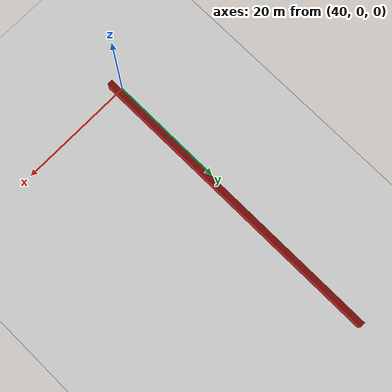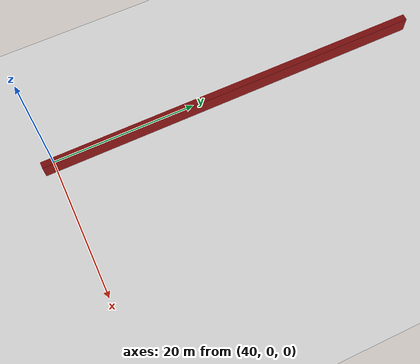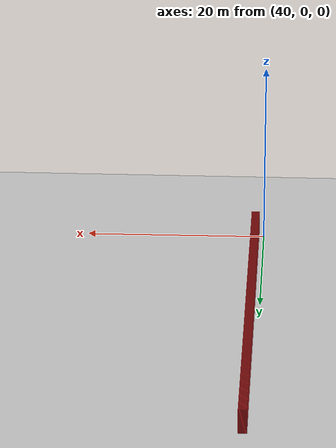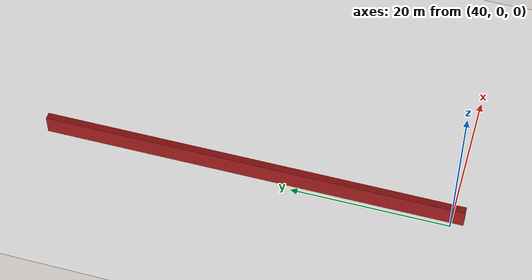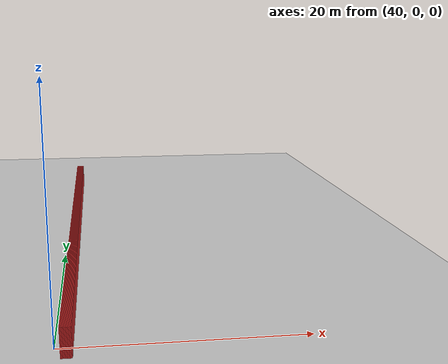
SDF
<sdf version="1.4">
 <world name="1_wall">
  <model name="ground_plane">
   <static>1</static>
   <link name="link">
    <collision name="collision">
     <geometry><plane><normal>0 0 1</normal><size>1000 1000</size></plane></geometry>
     <surface><friction><ode><mu>100</mu><mu2>50</mu2></ode></friction></surface>
    </collision>
    <visual name="visual">
     <cast_shadows>0</cast_shadows>
     <geometry><plane><normal>0 0 1</normal><size>10000 10000</size></plane></geometry>
     <material>
      <script><uri>file://media/materials/scripts/gazebo.material</uri><name>Gazebo/Grey</name></script>
     </material>
    </visual>
    <velocity_decay><linear>0</linear><angular>0</angular></velocity_decay>
   </link>
  </model>
  <model name="Wall_841">
   <static>1</static>
   <link name="Wall_841">
    <collision name="Wall_Collision_841">
     <geometry><box><size>53.65 0.05 2.5</size></box></geometry>
     <pose>0 0 1.25 0 -0 0</pose>
    </collision>
    <visual name="Wall_Visual_841">
     <pose>0 0 1.25 0 -0 0</pose>
     <geometry><box><size>53.65 0.05 2.5</size></box></geometry>
     <material>
      <script><uri>file://media/materials/scripts/gazebo.material</uri><name>Gazebo/Red</name></script>
     </material>
    </visual>
    <velocity_decay><linear>0</linear><angular>0</angular></velocity_decay>
    <pose>40.55 25.3 0 0 0 1.5707963267948966</pose>
   </link>
  </model>
  <model name="Wall_842">
   <static>1</static>
   <link name="Wall_842">
    <collision name="Wall_Collision_842">
     <geometry><box><size>53.65 0.05 2.5</size></box></geometry>
     <pose>0 0 1.25 0 -0 0</pose>
    </collision>
    <visual name="Wall_Visual_842">
     <pose>0 0 1.25 0 -0 0</pose>
     <geometry><box><size>53.65 0.05 2.5</size></box></geometry>
     <material>
      <script><uri>file://media/materials/scripts/gazebo.material</uri><name>Gazebo/Red</name></script>
     </material>
    </visual>
    <velocity_decay><linear>0</linear><angular>0</angular></velocity_decay>
    <pose>40.6 25.3 0 0 0 1.5707963267948966</pose>
   </link>
  </model>
  <model name="Wall_843">
   <static>1</static>
   <link name="Wall_843">
    <collision name="Wall_Collision_843">
     <geometry><box><size>53.65 0.05 2.5</size></box></geometry>
     <pose>0 0 1.25 0 -0 0</pose>
    </collision>
    <visual name="Wall_Visual_843">
     <pose>0 0 1.25 0 -0 0</pose>
     <geometry><box><size>53.65 0.05 2.5</size></box></geometry>
     <material>
      <script><uri>file://media/materials/scripts/gazebo.material</uri><name>Gazebo/Red</name></script>
     </material>
    </visual>
    <velocity_decay><linear>0</linear><angular>0</angular></velocity_decay>
    <pose>40.65 25.3 0 0 0 1.5707963267948966</pose>
   </link>
  </model>
  <model name="Wall_844">
   <static>1</static>
   <link name="Wall_844">
    <collision name="Wall_Collision_844">
     <geometry><box><size>53.65 0.05 2.5</size></box></geometry>
     <pose>0 0 1.25 0 -0 0</pose>
    </collision>
    <visual name="Wall_Visual_844">
     <pose>0 0 1.25 0 -0 0</pose>
     <geometry><box><size>53.65 0.05 2.5</size></box></geometry>
     <material>
      <script><uri>file://media/materials/scripts/gazebo.material</uri><name>Gazebo/Red</name></script>
     </material>
    </visual>
    <velocity_decay><linear>0</linear><angular>0</angular></velocity_decay>
    <pose>40.7 25.3 0 0 0 1.5707963267948966</pose>
   </link>
  </model>
  <model name="Wall_845">
   <static>1</static>
   <link name="Wall_845">
    <collision name="Wall_Collision_845">
     <geometry><box><size>53.65 0.05 2.5</size></box></geometry>
     <pose>0 0 1.25 0 -0 0</pose>
    </collision>
    <visual name="Wall_Visual_845">
     <pose>0 0 1.25 0 -0 0</pose>
     <geometry><box><size>53.65 0.05 2.5</size></box></geometry>
     <material>
      <script><uri>file://media/materials/scripts/gazebo.material</uri><name>Gazebo/Red</name></script>
     </material>
    </visual>
    <velocity_decay><linear>0</linear><angular>0</angular></velocity_decay>
    <pose>40.75 25.3 0 0 0 1.5707963267948966</pose>
   </link>
  </model>
  <model name="Wall_846">
   <static>1</static>
   <link name="Wall_846">
    <collision name="Wall_Collision_846">
     <geometry><box><size>53.65 0.05 2.5</size></box></geometry>
     <pose>0 0 1.25 0 -0 0</pose>
    </collision>
    <visual name="Wall_Visual_846">
     <pose>0 0 1.25 0 -0 0</pose>
     <geometry><box><size>53.65 0.05 2.5</size></box></geometry>
     <material>
      <script><uri>file://media/materials/scripts/gazebo.material</uri><name>Gazebo/Red</name></script>
     </material>
    </visual>
    <velocity_decay><linear>0</linear><angular>0</angular></velocity_decay>
    <pose>40.8 25.3 0 0 0 1.5707963267948966</pose>
   </link>
  </model>
  <model name="Wall_847">
   <static>1</static>
   <link name="Wall_847">
    <collision name="Wall_Collision_847">
     <geometry><box><size>53.65 0.05 2.5</size></box></geometry>
     <pose>0 0 1.25 0 -0 0</pose>
    </collision>
    <visual name="Wall_Visual_847">
     <pose>0 0 1.25 0 -0 0</pose>
     <geometry><box><size>53.65 0.05 2.5</size></box></geometry>
     <material>
      <script><uri>file://media/materials/scripts/gazebo.material</uri><name>Gazebo/Red</name></script>
     </material>
    </visual>
    <velocity_decay><linear>0</linear><angular>0</angular></velocity_decay>
    <pose>40.85 25.3 0 0 0 1.5707963267948966</pose>
   </link>
  </model>
  <model name="Wall_848">
   <static>1</static>
   <link name="Wall_848">
    <collision name="Wall_Collision_848">
     <geometry><box><size>53.65 0.05 2.5</size></box></geometry>
     <pose>0 0 1.25 0 -0 0</pose>
    </collision>
    <visual name="Wall_Visual_848">
     <pose>0 0 1.25 0 -0 0</pose>
     <geometry><box><size>53.65 0.05 2.5</size></box></geometry>
     <material>
      <script><uri>file://media/materials/scripts/gazebo.material</uri><name>Gazebo/Red</name></script>
     </material>
    </visual>
    <velocity_decay><linear>0</linear><angular>0</angular></velocity_decay>
    <pose>40.9 25.3 0 0 0 1.5707963267948966</pose>
   </link>
  </model>
  <model name="Wall_849">
   <static>1</static>
   <link name="Wall_849">
    <collision name="Wall_Collision_849">
     <geometry><box><size>53.65 0.05 2.5</size></box></geometry>
     <pose>0 0 1.25 0 -0 0</pose>
    </collision>
    <visual name="Wall_Visual_849">
     <pose>0 0 1.25 0 -0 0</pose>
     <geometry><box><size>53.65 0.05 2.5</size></box></geometry>
     <material>
      <script><uri>file://media/materials/scripts/gazebo.material</uri><name>Gazebo/Red</name></script>
     </material>
    </visual>
    <velocity_decay><linear>0</linear><angular>0</angular></velocity_decay>
    <pose>40.95 25.3 0 0 0 1.5707963267948966</pose>
   </link>
  </model>
  <model name="Wall_850">
   <static>1</static>
   <link name="Wall_850">
    <collision name="Wall_Collision_850">
     <geometry><box><size>53.65 0.05 2.5</size></box></geometry>
     <pose>0 0 1.25 0 -0 0</pose>
    </collision>
    <visual name="Wall_Visual_850">
     <pose>0 0 1.25 0 -0 0</pose>
     <geometry><box><size>53.65 0.05 2.5</size></box></geometry>
     <material>
      <script><uri>file://media/materials/scripts/gazebo.material</uri><name>Gazebo/Red</name></script>
     </material>
    </visual>
    <velocity_decay><linear>0</linear><angular>0</angular></velocity_decay>
    <pose>41.0 25.3 0 0 0 1.5707963267948966</pose>
   </link>
  </model>
  <model name="Wall_851">
   <static>1</static>
   <link name="Wall_851">
    <collision name="Wall_Collision_851">
     <geometry><box><size>53.65 0.05 2.5</size></box></geometry>
     <pose>0 0 1.25 0 -0 0</pose>
    </collision>
    <visual name="Wall_Visual_851">
     <pose>0 0 1.25 0 -0 0</pose>
     <geometry><box><size>53.65 0.05 2.5</size></box></geometry>
     <material>
      <script><uri>file://media/materials/scripts/gazebo.material</uri><name>Gazebo/Red</name></script>
     </material>
    </visual>
    <velocity_decay><linear>0</linear><angular>0</angular></velocity_decay>
    <pose>41.05 25.3 0 0 0 1.5707963267948966</pose>
   </link>
  </model>
  <model name="Wall_852">
   <static>1</static>
   <link name="Wall_852">
    <collision name="Wall_Collision_852">
     <geometry><box><size>53.65 0.05 2.5</size></box></geometry>
     <pose>0 0 1.25 0 -0 0</pose>
    </collision>
    <visual name="Wall_Visual_852">
     <pose>0 0 1.25 0 -0 0</pose>
     <geometry><box><size>53.65 0.05 2.5</size></box></geometry>
     <material>
      <script><uri>file://media/materials/scripts/gazebo.material</uri><name>Gazebo/Red</name></script>
     </material>
    </visual>
    <velocity_decay><linear>0</linear><angular>0</angular></velocity_decay>
    <pose>41.1 25.3 0 0 0 1.5707963267948966</pose>
   </link>
  </model>
  <model name="Wall_853">
   <static>1</static>
   <link name="Wall_853">
    <collision name="Wall_Collision_853">
     <geometry><box><size>53.65 0.05 2.5</size></box></geometry>
     <pose>0 0 1.25 0 -0 0</pose>
    </collision>
    <visual name="Wall_Visual_853">
     <pose>0 0 1.25 0 -0 0</pose>
     <geometry><box><size>53.65 0.05 2.5</size></box></geometry>
     <material>
      <script><uri>file://media/materials/scripts/gazebo.material</uri><name>Gazebo/Red</name></script>
     </material>
    </visual>
    <velocity_decay><linear>0</linear><angular>0</angular></velocity_decay>
    <pose>41.15 25.3 0 0 0 1.5707963267948966</pose>
   </link>
  </model>
  <model name="Wall_854">
   <static>1</static>
   <link name="Wall_854">
    <collision name="Wall_Collision_854">
     <geometry><box><size>53.65 0.05 2.5</size></box></geometry>
     <pose>0 0 1.25 0 -0 0</pose>
    </collision>
    <visual name="Wall_Visual_854">
     <pose>0 0 1.25 0 -0 0</pose>
     <geometry><box><size>53.65 0.05 2.5</size></box></geometry>
     <material>
      <script><uri>file://media/materials/scripts/gazebo.material</uri><name>Gazebo/Red</name></script>
     </material>
    </visual>
    <velocity_decay><linear>0</linear><angular>0</angular></velocity_decay>
    <pose>41.2 25.3 0 0 0 1.5707963267948966</pose>
   </link>
  </model>
  <model name="Wall_855">
   <static>1</static>
   <link name="Wall_855">
    <collision name="Wall_Collision_855">
     <geometry><box><size>53.65 0.05 2.5</size></box></geometry>
     <pose>0 0 1.25 0 -0 0</pose>
    </collision>
    <visual name="Wall_Visual_855">
     <pose>0 0 1.25 0 -0 0</pose>
     <geometry><box><size>53.65 0.05 2.5</size></box></geometry>
     <material>
      <script><uri>file://media/materials/scripts/gazebo.material</uri><name>Gazebo/Red</name></script>
     </material>
    </visual>
    <velocity_decay><linear>0</linear><angular>0</angular></velocity_decay>
    <pose>41.25 25.3 0 0 0 1.5707963267948966</pose>
   </link>
  </model>
  <model name="Wall_856">
   <static>1</static>
   <link name="Wall_856">
    <collision name="Wall_Collision_856">
     <geometry><box><size>53.65 0.05 2.5</size></box></geometry>
     <pose>0 0 1.25 0 -0 0</pose>
    </collision>
    <visual name="Wall_Visual_856">
     <pose>0 0 1.25 0 -0 0</pose>
     <geometry><box><size>53.65 0.05 2.5</size></box></geometry>
     <material>
      <script><uri>file://media/materials/scripts/gazebo.material</uri><name>Gazebo/Red</name></script>
     </material>
    </visual>
    <velocity_decay><linear>0</linear><angular>0</angular></velocity_decay>
    <pose>41.3 25.3 0 0 0 1.5707963267948966</pose>
   </link>
  </model>
  <model name="Wall_857">
   <static>1</static>
   <link name="Wall_857">
    <collision name="Wall_Collision_857">
     <geometry><box><size>53.65 0.05 2.5</size></box></geometry>
     <pose>0 0 1.25 0 -0 0</pose>
    </collision>
    <visual name="Wall_Visual_857">
     <pose>0 0 1.25 0 -0 0</pose>
     <geometry><box><size>53.65 0.05 2.5</size></box></geometry>
     <material>
      <script><uri>file://media/materials/scripts/gazebo.material</uri><name>Gazebo/Red</name></script>
     </material>
    </visual>
    <velocity_decay><linear>0</linear><angular>0</angular></velocity_decay>
    <pose>41.35 25.3 0 0 0 1.5707963267948966</pose>
   </link>
  </model>
  <model name="Wall_858">
   <static>1</static>
   <link name="Wall_858">
    <collision name="Wall_Collision_858">
     <geometry><box><size>53.65 0.05 2.5</size></box></geometry>
     <pose>0 0 1.25 0 -0 0</pose>
    </collision>
    <visual name="Wall_Visual_858">
     <pose>0 0 1.25 0 -0 0</pose>
     <geometry><box><size>53.65 0.05 2.5</size></box></geometry>
     <material>
      <script><uri>file://media/materials/scripts/gazebo.material</uri><name>Gazebo/Red</name></script>
     </material>
    </visual>
    <velocity_decay><linear>0</linear><angular>0</angular></velocity_decay>
    <pose>41.4 25.3 0 0 0 1.5707963267948966</pose>
   </link>
  </model>
 </world>
</sdf>
